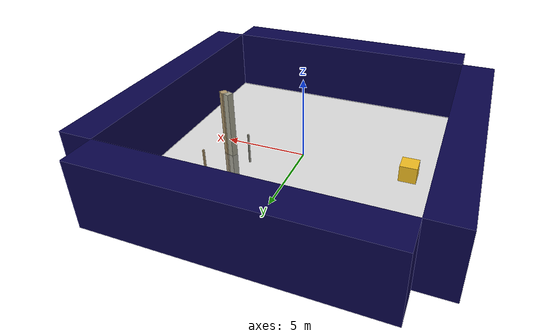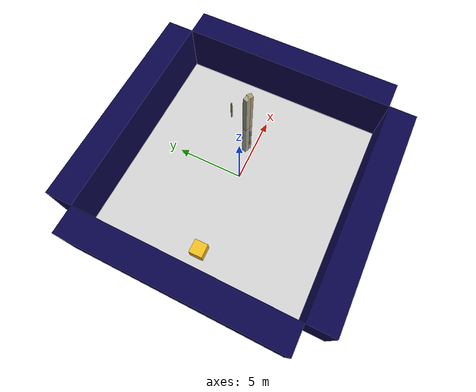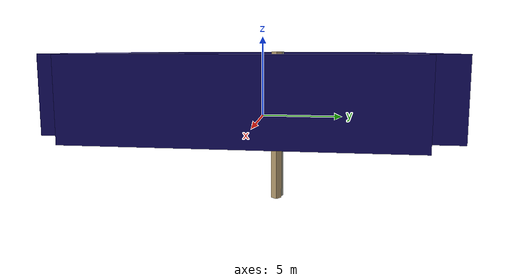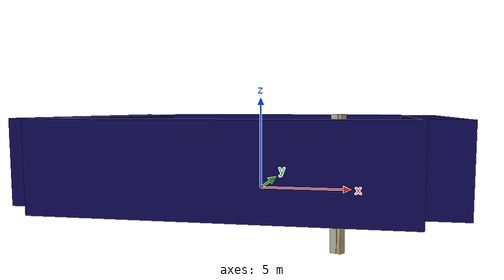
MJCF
<mujoco model="unnamed_model">
  <default>
    <default class="/" />
    <default class="border/" />
    <default class="border_1/" />
    <default class="border_2/" />
    <default class="border_3/" />
    <default class="light/" />
    <default class="agent/" />
    <default class="stone0/" />
    <default class="stone1/" />
    <default class="apple/" />
    <default class="apple_1/" />
  </default>
  <worldbody>
    <body name="border/">
      <body name="border/border" pos="0 9 2">
        <geom name="border/border_geom" class="border/" type="box" size="8.0 1.0 2.0" rgba="0.035 0.016 0.29 1.0" />
      </body>
    </body>
    <body name="border_1/">
      <body name="border_1/border" pos="0 -9 2">
        <geom name="border_1/border_geom" class="border_1/" type="box" size="8.0 1.0 2.0" rgba="0.035 0.016 0.29 1.0" />
      </body>
    </body>
    <body name="border_2/">
      <body name="border_2/border" pos="9 0 2">
        <geom name="border_2/border_geom" class="border_2/" type="box" size="1.0 8.0 2.0" rgba="0.035 0.016 0.29 1.0" />
      </body>
    </body>
    <body name="border_3/">
      <body name="border_3/border" pos="-9 0 2">
        <geom name="border_3/border_geom" class="border_3/" type="box" size="1.0 8.0 2.0" rgba="0.035 0.016 0.29 1.0" />
      </body>
    </body>
    <body name="light/">
      <body name="light/light" pos="0 0 15">
        <geom name="light/light_geom" class="light/" size="0.5" rgba="1.0 1.0 1.0 0.0" />
        <light name="light//unnamed_light_0" class="light/" />
      </body>
    </body>
    <body euler="0 0 270.71935533980985" name="agent/" pos="-6.4000000000000004 0 0.5">
      <joint name="agent/boxagent_freeJoint/" class="/" type="free" />
      <body name="agent/agent" pos="0 0 0" euler="0 0 0">
        <geom name="agent/boxagent_geom" class="agent/" type="box" size="0.5 0.5 0.5" rgba="0.949 0.7451 0.1333 1.0" euler="0 0 0" />
        <camera name="agent/boxagent_camera" class="agent/" fovy="90" pos="0 0 0.25" euler="-90 180 0" />
      </body>
    </body>
    <body name="stone0/">
      <body name="stone0/stone0" pos="4.3881499999999996 1.2851999999999997 0.10000000000000001" euler="0 0 49.96949827144249">
        <geom name="stone0/stone_geom" class="stone0/" type="box" size="0.2 0.2 4.0" rgba="0.6980392156862745 0.6 0.43137254901960786 1.0" />
      </body>
    </body>
    <body name="stone1/">
      <body name="stone1/stone1" pos="3.3311500000000001 0.65499999999999936 0.10000000000000001" euler="0 0 139.45349810322637">
        <geom name="stone1/stone_geom" class="stone1/" type="box" size="0.05 0.05 1.0" rgba="0.6470588235294118 0.6392156862745098 0.5686274509803921 1.0" />
      </body>
    </body>
    <body name="apple/">
      <body name="apple/apple" pos="4.0750000000000002 1.3748000000000005 0.10000000000000001" euler="0 0 -21.101513705957586">
        <geom name="apple/apple_geom" class="apple/" type="box" size="0.2 0.2 4.0" rgba="0.6470588235294118 0.6392156862745098 0.5686274509803921 1.0" />
      </body>
    </body>
    <body name="apple_1/">
      <body name="apple_1/apple" pos="4.98665 3.1191999999999993 0.10000000000000001" euler="0 0 72.01589827050131">
        <geom name="apple_1/apple_geom" class="apple_1/" type="box" size="0.05 0.05 1.0" rgba="0.6980392156862745 0.6 0.43137254901960786 1.0" />
      </body>
    </body>
    <geom name="base_plane" class="/" type="plane" size="8 8 0.10000000000000001" />
  </worldbody>
</mujoco>
